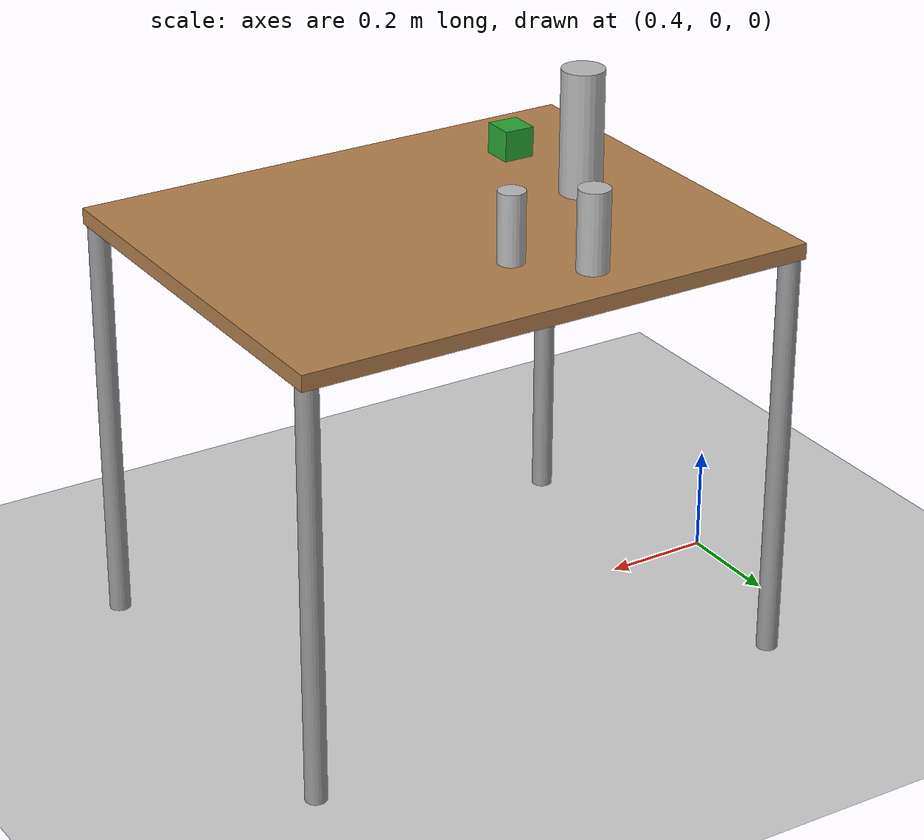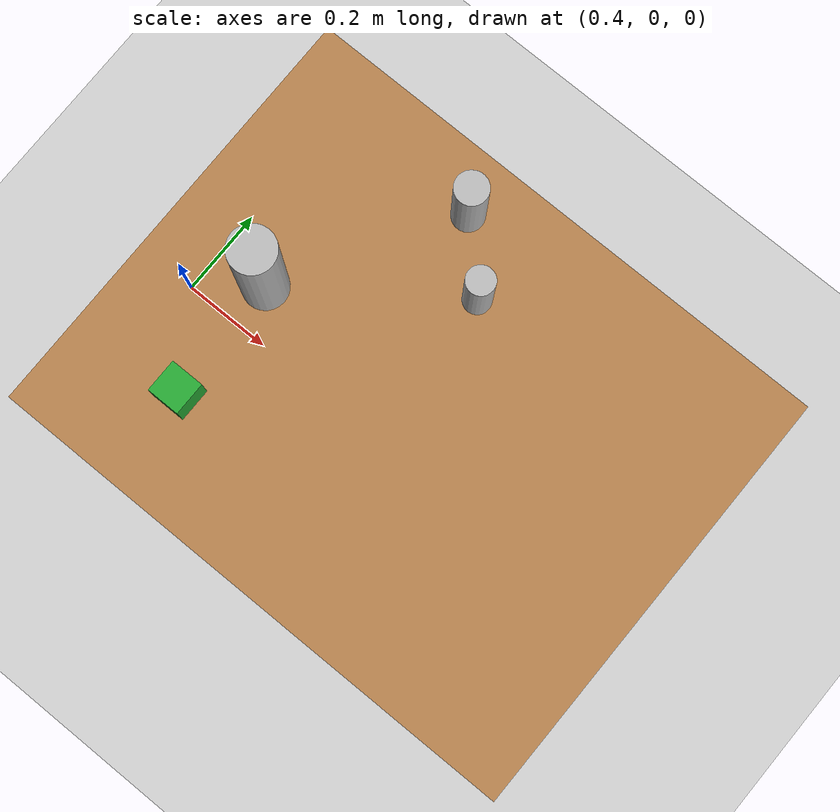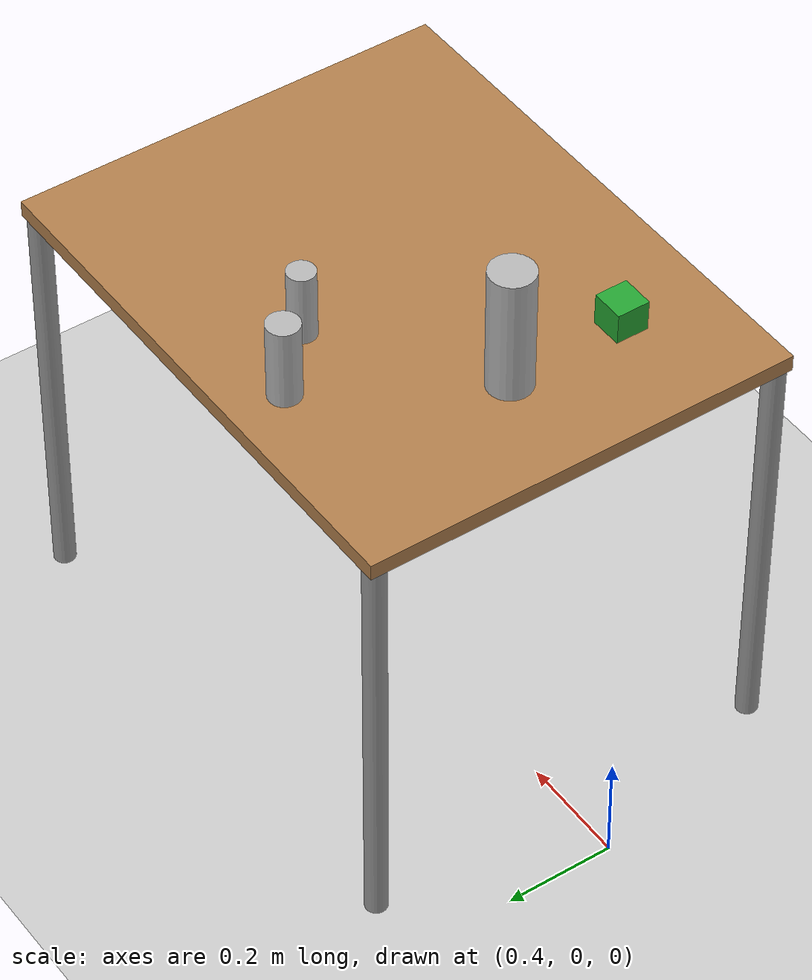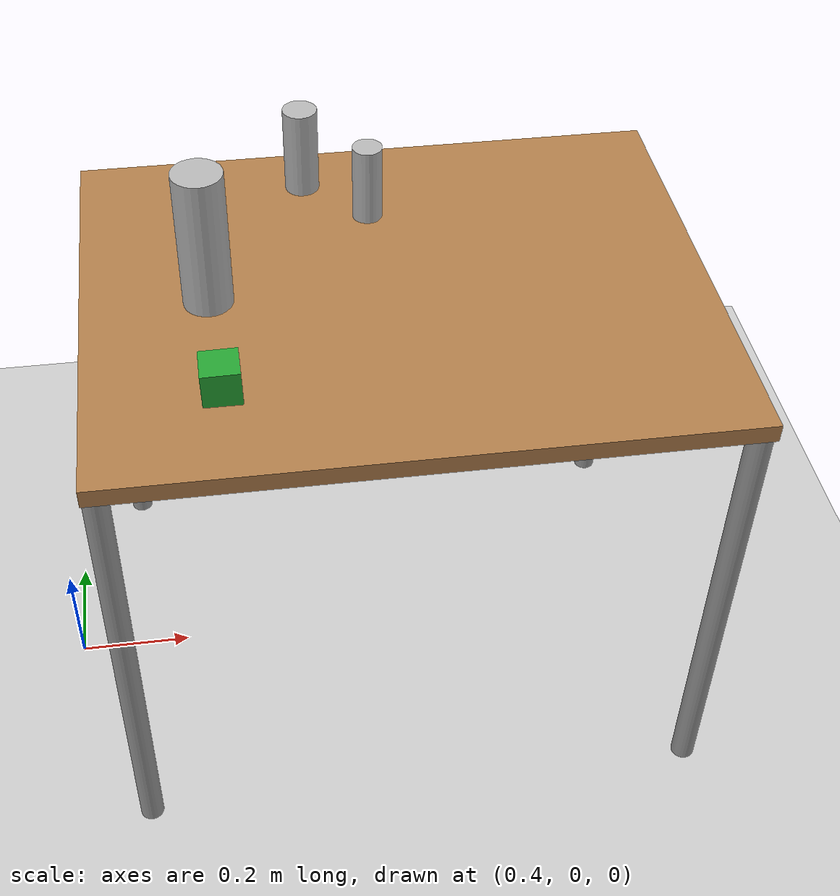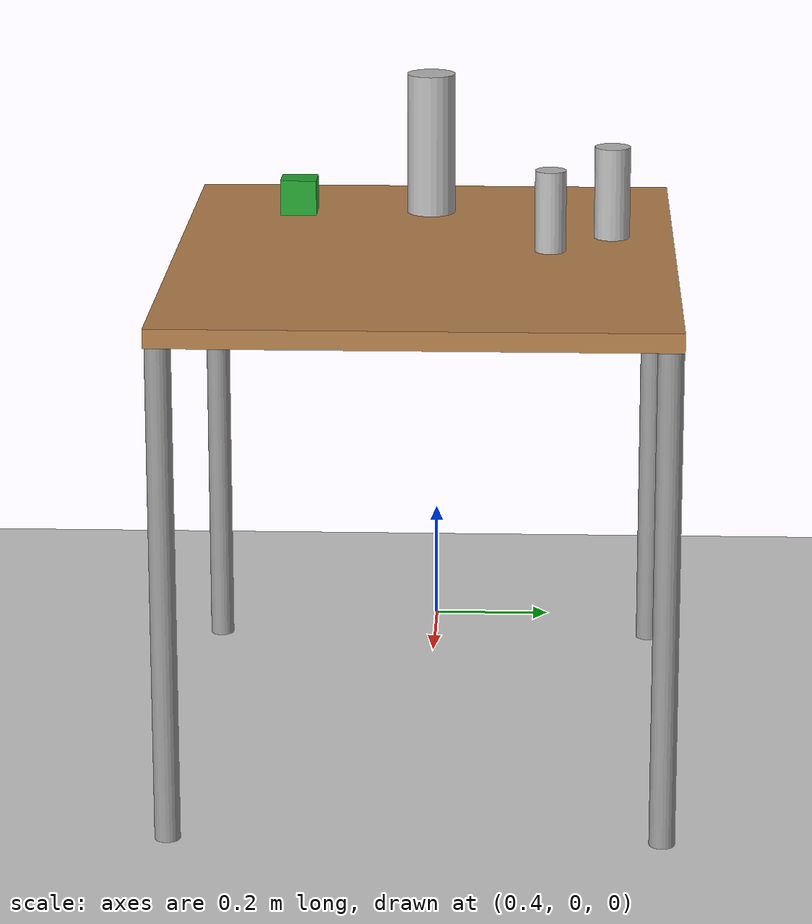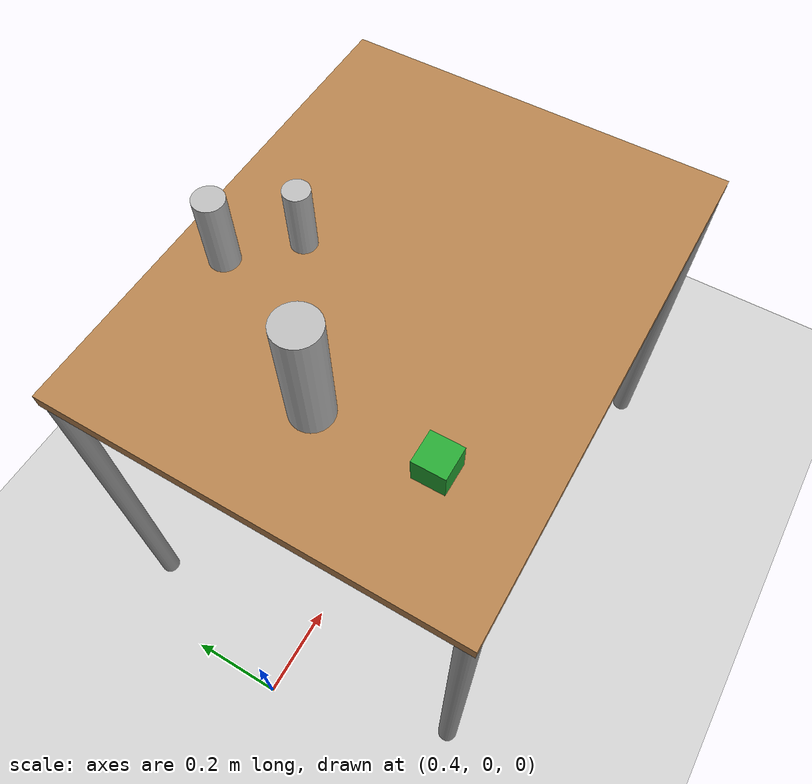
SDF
<sdf version="1.7">
 <world name="default">
  <physics type="ode">
   <ode>
    <solver>
     <type>quick</type>
     <iters>20</iters>
     <sor>1</sor>
     <use_dynamic_moi_rescaling>0</use_dynamic_moi_rescaling>
    </solver>
    <constraints>
     <cfm>0</cfm>
     <erp>0.2</erp>
     <contact_max_correcting_vel>100</contact_max_correcting_vel>
     <contact_surface_layer>0</contact_surface_layer>
    </constraints>
   </ode>
   <real_time_update_rate>1000</real_time_update_rate>
   <max_step_size>0.001</max_step_size>
   <real_time_factor>1</real_time_factor>
  </physics>
  <light name="light1" type="directional">
   <pose>-2 0 4 0 -0 0</pose>
   <diffuse>1 1 1 1</diffuse>
   <specular>0.1 0.1 0.1 1</specular>
   <attenuation>
    <range>20</range>
    <constant>0.9</constant>
    <linear>0.01</linear>
    <quadratic>0.001</quadratic>
   </attenuation>
   <direction>0.2 0 -1</direction>
   <spot><inner_angle>0</inner_angle><outer_angle>0</outer_angle><falloff>0</falloff></spot>
  </light>
  <model name="ground_plane">
   <static>1</static>
   <link name="link">
    <collision name="collision">
     <geometry><plane><normal>0 0 1</normal><size>100 100</size></plane></geometry>
     <surface>
      <contact><collide_bitmask>65535</collide_bitmask></contact>
      <friction><ode><mu>100</mu><mu2>50</mu2></ode></friction>
     </surface>
    </collision>
    <visual name="visual">
     <cast_shadows>0</cast_shadows>
     <geometry><plane><normal>0 0 1</normal><size>100 100</size></plane></geometry>
     <material>
      <script><uri>file://media/materials/scripts/gazebo.material</uri><name>Gazebo/Grey</name></script>
     </material>
    </visual>
   </link>
  </model>
  <model name="table1">
   <static>1</static>
   <link name="link">
    <collision name="surface">
     <pose>0 0 0.8 0 -0 0</pose>
     <geometry><box><size>1 0.8 0.03</size></box></geometry>
    </collision>
    <visual name="visual1">
     <pose>0 0 0.8 0 -0 0</pose>
     <geometry><box><size>1 0.8 0.03</size></box></geometry>
     <material>
      <script><uri>file://media/materials/scripts/gazebo.material</uri><name>Gazebo/Wood</name></script>
     </material>
    </visual>
    <collision name="front_left_leg">
     <pose>0.48 0.38 0.4 0 -0 0</pose>
     <geometry><cylinder><radius>0.02</radius><length>0.8</length></cylinder></geometry>
    </collision>
    <visual name="front_left_leg">
     <pose>0.48 0.38 0.4 0 -0 0</pose>
     <geometry><cylinder><radius>0.02</radius><length>0.8</length></cylinder></geometry>
     <material>
      <script><uri>file://media/materials/scripts/gazebo.material</uri><name>Gazebo/Grey</name></script>
     </material>
    </visual>
    <collision name="front_right_leg">
     <pose>0.48 -0.38 0.4 0 -0 0</pose>
     <geometry><cylinder><radius>0.02</radius><length>0.8</length></cylinder></geometry>
    </collision>
    <visual name="front_right_leg">
     <pose>0.48 -0.38 0.4 0 -0 0</pose>
     <geometry><cylinder><radius>0.02</radius><length>0.8</length></cylinder></geometry>
     <material>
      <script><uri>file://media/materials/scripts/gazebo.material</uri><name>Gazebo/Grey</name></script>
     </material>
    </visual>
    <collision name="back_right_leg">
     <pose>-0.48 -0.38 0.4 0 -0 0</pose>
     <geometry><cylinder><radius>0.02</radius><length>0.8</length></cylinder></geometry>
    </collision>
    <visual name="back_right_leg">
     <pose>-0.48 -0.38 0.4 0 -0 0</pose>
     <geometry><cylinder><radius>0.02</radius><length>0.8</length></cylinder></geometry>
     <material>
      <script><uri>file://media/materials/scripts/gazebo.material</uri><name>Gazebo/Grey</name></script>
     </material>
    </visual>
    <collision name="back_left_leg">
     <pose>-0.48 0.38 0.4 0 -0 0</pose>
     <geometry><cylinder><radius>0.02</radius><length>0.8</length></cylinder></geometry>
    </collision>
    <visual name="back_left_leg">
     <pose>-0.48 0.38 0.4 0 -0 0</pose>
     <geometry><cylinder><radius>0.02</radius><length>0.8</length></cylinder></geometry>
     <material>
      <script><uri>file://media/materials/scripts/gazebo.material</uri><name>Gazebo/Grey</name></script>
     </material>
    </visual>
    <velocity_decay><linear>0</linear><angular>0</angular></velocity_decay>
   </link>
   <pose>1 0 0 0 -0 0</pose>
  </model>
  <model name="pringles">
   <static>0</static>
   <link name="link">
    <inertial>
     <mass>0.25</mass>
     <inertia><ixx>0</ixx><ixy>0</ixy><ixz>0</ixz><iyy>0</iyy><iyz>0</iyz><izz>0</izz></inertia>
    </inertial>
    <collision name="collision">
     <geometry><cylinder><radius>0.04</radius><length>0.235</length></cylinder></geometry>
    </collision>
    <visual name="visual">
     <geometry><cylinder><radius>0.04</radius><length>0.235</length></cylinder></geometry>
     <material>
      <script>
       <uri>model://pringles/material/scripts</uri>
       <uri>model://pringles/material/textures</uri>
       <name>Custom/pringles</name>
      </script>
     </material>
    </visual>
    <velocity_decay><linear>0</linear><angular>0</angular></velocity_decay>
   </link>
   <pose>0.702056 -3e-06 0.932509 0.000213 -0.000425 2.61998</pose>
  </model>
  <model name="biscuits_pack">
   <static>0</static>
   <link name="link">
    <inertial>
     <mass>0.01</mass>
     <inertia><ixx>0.001</ixx><ixy>0</ixy><ixz>0</ixz><iyy>0.001</iyy><iyz>0</iyz><izz>0.001</izz></inertia>
    </inertial>
    <collision name="collision">
     <geometry><cylinder><radius>0.029</radius><length>0.15</length></cylinder></geometry>
     <surface>
      <friction><ode><mu>1000</mu><mu2>1000</mu2><fdir1>0 0 0</fdir1></ode></friction>
      <contact><ode><kd>1</kd><min_depth>0.01</min_depth><max_vel>0</max_vel></ode></contact>
     </surface>
    </collision>
    <visual name="visual">
     <geometry><cylinder><radius>0.029</radius><length>0.15</length></cylinder></geometry>
     <material>
      <script>
       <uri>model://biscuits_pack/material/scripts</uri>
       <uri>model://biscuits_pack/material/textures</uri>
       <name>Custom/biscuits_pack</name>
      </script>
     </material>
    </visual>
    <velocity_decay><linear>0</linear><angular>0</angular></velocity_decay>
   </link>
   <pose>0.879992 0.300014 0.889999 -0.000111 0.000187 1.5</pose>
  </model>
  <model name="green_cube">
   <static>0</static>
   <link name="link">
    <inertial>
     <mass>0.25</mass>
     <inertia>
      <ixx>4.1667e-05</ixx>
      <ixy>0</ixy>
      <ixz>0</ixz>
      <iyy>4.1667e-05</iyy>
      <iyz>0</iyz>
      <izz>4.1667e-05</izz>
     </inertia>
    </inertial>
    <visual name="visual">
     <geometry><box><size>0.06 0.06 0.06</size></box></geometry>
     <material>
      <script><uri>file://media/materials/scripts/gazebo.material</uri><name>Gazebo/Green</name></script>
     </material>
    </visual>
    <collision name="collision">
     <geometry><box><size>0.06 0.06 0.06</size></box></geometry>
     <surface>
      <friction><ode><mu>30</mu><mu2>30</mu2></ode></friction>
      <contact><ode><kp>1e+06</kp><kd>100</kd><max_vel>1</max_vel><min_depth>0.0025</min_depth></ode></contact>
     </surface>
    </collision>
    <velocity_decay><linear>0</linear><angular>0</angular></velocity_decay>
   </link>
   <pose>0.709449 -0.221001 0.843043 1e-06 -0.018301 -8e-06</pose>
  </model>
  <model name="bifrutas_tropical_can">
   <static>0</static>
   <link name="link">
    <inertial>
     <mass>0.25</mass>
     <inertia><ixx>0</ixx><ixy>0</ixy><ixz>0</ixz><iyy>0</iyy><iyz>0</iyz><izz>0</izz></inertia>
    </inertial>
    <collision name="collision">
     <geometry><cylinder><radius>0.025</radius><length>0.132</length></cylinder></geometry>
    </collision>
    <visual name="visual">
     <geometry><cylinder><radius>0.025</radius><length>0.132</length></cylinder></geometry>
     <material>
      <script>
       <uri>model://bifrutas_tropical_can/material/scripts</uri>
       <uri>model://bifrutas_tropical_can/material/textures</uri>
       <name>Custom/bifrutas_tropical_can</name>
      </script>
     </material>
    </visual>
    <velocity_decay><linear>0</linear><angular>0</angular></velocity_decay>
   </link>
   <pose>0.980011 0.200023 0.881 -0.000381 -1.4e-05 -0.500016</pose>
  </model>
  <gravity>0 0 -9.81</gravity>
  <magnetic_field>6e-06 2.3e-05 -4.2e-05</magnetic_field>
  <atmosphere type="adiabatic"/>
  <scene><ambient>0.4 0.4 0.4 1</ambient><background>0.7 0.7 0.7 1</background><shadows>1</shadows></scene>
  <spherical_coordinates>
   <surface_model>EARTH_WGS84</surface_model>
   <latitude_deg>0</latitude_deg>
   <longitude_deg>0</longitude_deg>
   <elevation>0</elevation>
   <heading_deg>0</heading_deg>
  </spherical_coordinates>
 </world>
</sdf>
